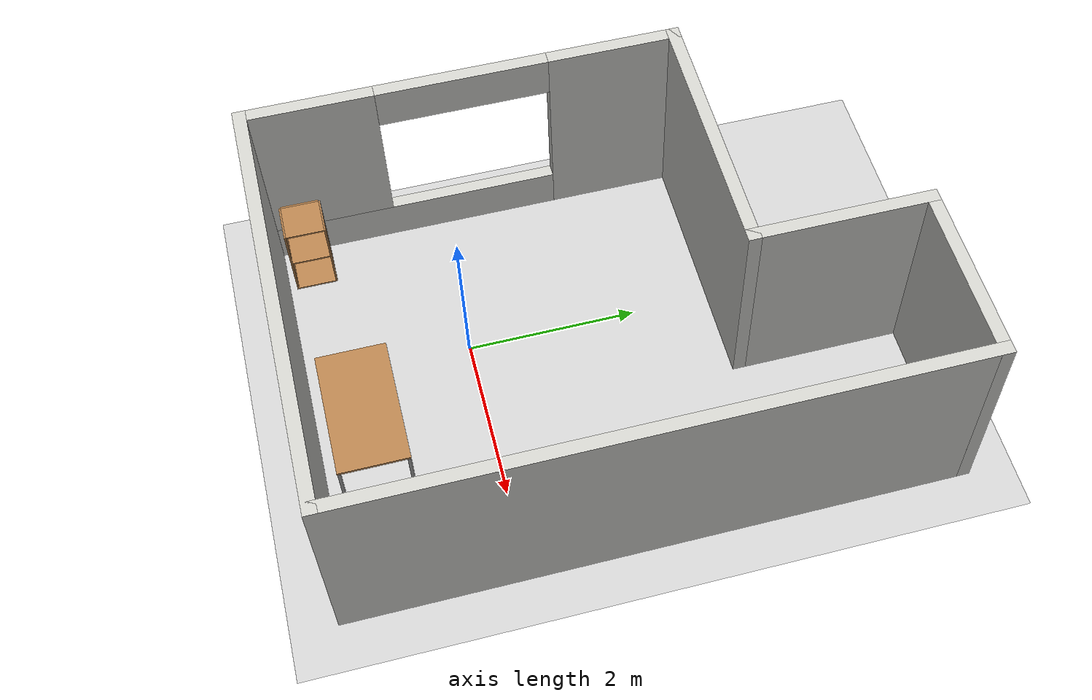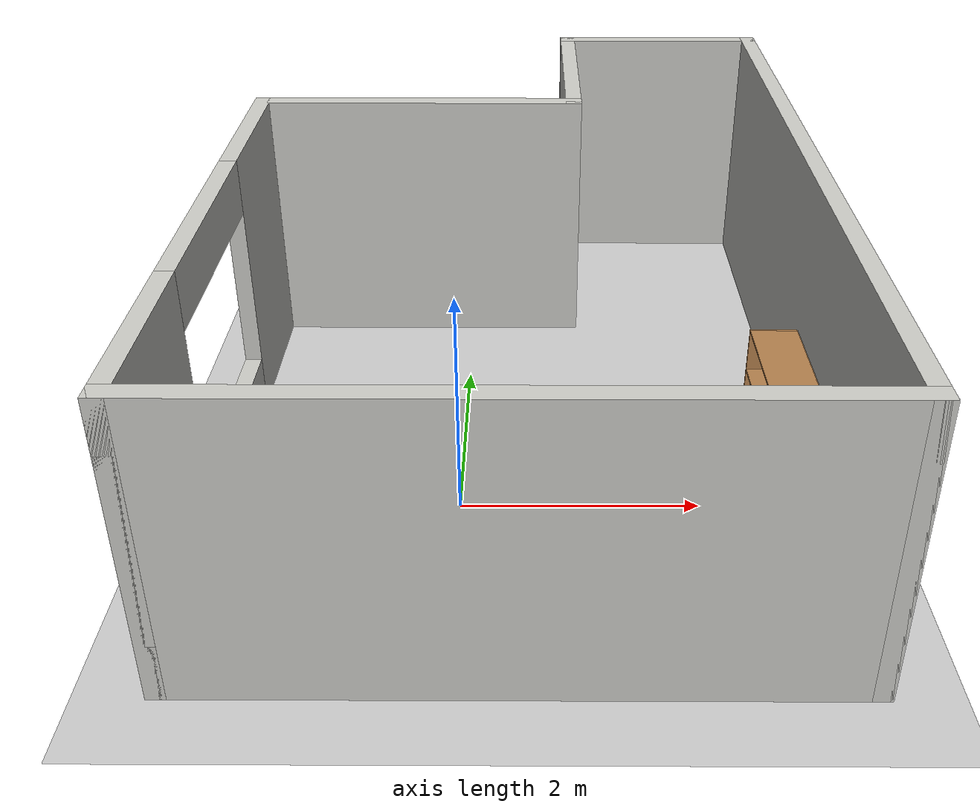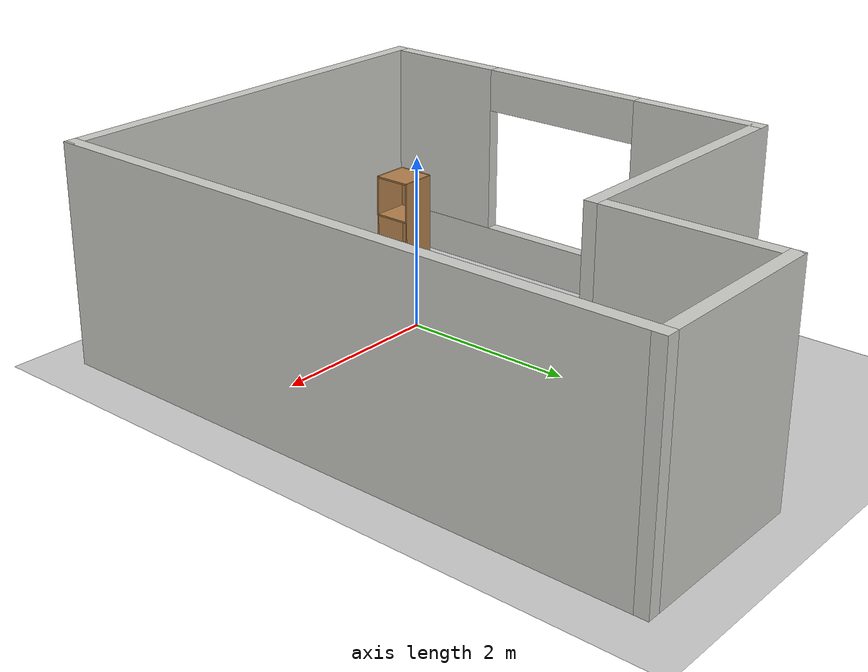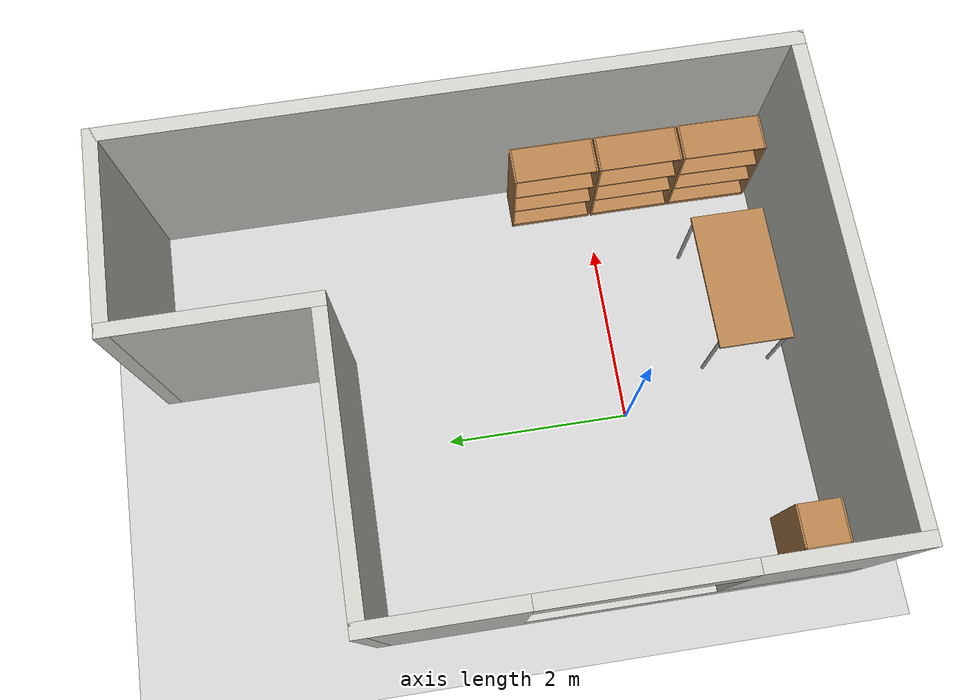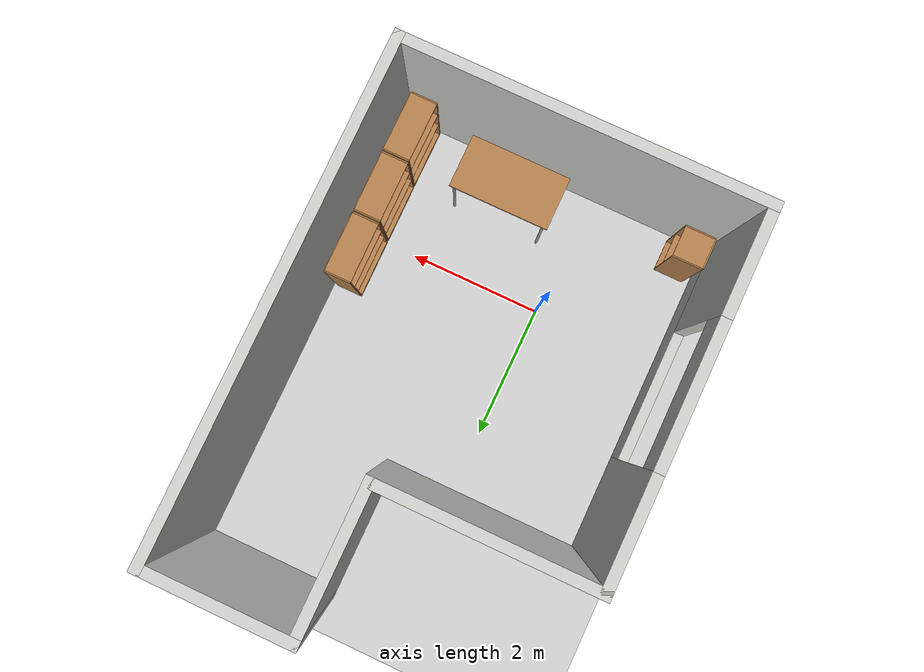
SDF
<sdf version="1.6">
 <world name="default">
  <light name="sun" type="directional">
   <pose>0 0 10 0 -0 0</pose>
   <diffuse>0.8 0.8 0.8 1</diffuse>
   <specular>0.2 0.2 0.2 1</specular>
   <attenuation>
    <range>1000</range>
    <constant>0.9</constant>
    <linear>0.01</linear>
    <quadratic>0.001</quadratic>
   </attenuation>
   <direction>-0.5 0.1 -0.9</direction>
   <spot><inner_angle>0</inner_angle><outer_angle>0</outer_angle><falloff>0</falloff></spot>
  </light>
  <model name="ground_plane">
   <static>1</static>
   <link name="link">
    <collision name="collision">
     <geometry><plane><normal>0 0 1</normal><size>100 100</size></plane></geometry>
     <surface>
      <contact><collide_bitmask>65535</collide_bitmask></contact>
      <friction><ode><mu>100</mu><mu2>50</mu2></ode></friction>
     </surface>
    </collision>
    <visual name="visual">
     <cast_shadows>0</cast_shadows>
     <geometry><plane><normal>0 0 1</normal><size>100 100</size></plane></geometry>
     <material>
      <script><uri>file://media/materials/scripts/gazebo.material</uri><name>Gazebo/Grey</name></script>
     </material>
    </visual>
   </link>
  </model>
  <gravity>0 0 -9.8</gravity>
  <magnetic_field>6e-06 2.3e-05 -4.2e-05</magnetic_field>
  <atmosphere type="adiabatic"/>
  <physics type="ode">
   <max_step_size>0.001</max_step_size>
   <real_time_factor>1</real_time_factor>
   <real_time_update_rate>1000</real_time_update_rate>
  </physics>
  <scene><ambient>0.4 0.4 0.4 1</ambient><background>0.7 0.7 0.7 1</background><shadows>1</shadows></scene>
  <spherical_coordinates>
   <surface_model>EARTH_WGS84</surface_model>
   <latitude_deg>0</latitude_deg>
   <longitude_deg>0</longitude_deg>
   <elevation>0</elevation>
   <heading_deg>0</heading_deg>
  </spherical_coordinates>
  <model name="room">
   <pose>0.5 1.5 0 0 -0 0</pose>
   <link name="Wall_0">
    <pose>-2.5 -1 0 0 -0 -1.5708</pose>
    <visual name="Wall_0_Visual_0">
     <pose>-1.7875 0 1.25 0 -0 0</pose>
     <geometry><box><size>1.575 0.15 2.5</size></box></geometry>
     <material>
      <script><uri>file://media/materials/scripts/gazebo.material</uri><name>Gazebo/CeilingTiled</name></script>
      <ambient>1 1 1 1</ambient>
     </material>
     <meta><layer>0</layer></meta>
    </visual>
    <collision name="Wall_0_Collision_0">
     <geometry><box><size>1.575 0.15 2.5</size></box></geometry>
     <pose>-1.7875 0 1.25 0 -0 0</pose>
    </collision>
    <visual name="Wall_0_Visual_1">
     <pose>0.7875 0 0.25 0 -0 0</pose>
     <geometry><box><size>3.575 0.15 0.5</size></box></geometry>
     <material>
      <script><uri>file://media/materials/scripts/gazebo.material</uri><name>Gazebo/CeilingTiled</name></script>
      <ambient>1 1 1 1</ambient>
     </material>
     <meta><layer>0</layer></meta>
    </visual>
    <collision name="Wall_0_Collision_1">
     <geometry><box><size>3.575 0.15 0.5</size></box></geometry>
     <pose>0.7875 0 0.25 0 -0 0</pose>
    </collision>
    <visual name="Wall_0_Visual_2">
     <pose>1.7875 0 1.5 0 -0 0</pose>
     <geometry><box><size>1.575 0.15 2</size></box></geometry>
     <material>
      <script><uri>file://media/materials/scripts/gazebo.material</uri><name>Gazebo/CeilingTiled</name></script>
      <ambient>1 1 1 1</ambient>
     </material>
     <meta><layer>0</layer></meta>
    </visual>
    <collision name="Wall_0_Collision_2">
     <geometry><box><size>1.575 0.15 2</size></box></geometry>
     <pose>1.7875 0 1.5 0 -0 0</pose>
    </collision>
    <visual name="Wall_0_Visual_3">
     <pose>0 0 2.25 0 -0 0</pose>
     <geometry><box><size>2 0.15 0.5</size></box></geometry>
     <material>
      <script><uri>file://media/materials/scripts/gazebo.material</uri><name>Gazebo/CeilingTiled</name></script>
      <ambient>1 1 1 1</ambient>
     </material>
     <meta><layer>0</layer></meta>
    </visual>
    <collision name="Wall_0_Collision_3">
     <geometry><box><size>2 0.15 0.5</size></box></geometry>
     <pose>0 0 2.25 0 -0 0</pose>
    </collision>
   </link>
   <link name="Wall_1">
    <collision name="Wall_1_Collision">
     <geometry><box><size>5.15 0.15 2.5</size></box></geometry>
     <pose>0 0 1.25 0 -0 0</pose>
    </collision>
    <visual name="Wall_1_Visual">
     <pose>0 0 1.25 0 -0 0</pose>
     <geometry><box><size>5.15 0.15 2.5</size></box></geometry>
     <material>
      <script><uri>file://media/materials/scripts/gazebo.material</uri><name>Gazebo/CeilingTiled</name></script>
      <ambient>1 1 1 1</ambient>
     </material>
     <meta><layer>0</layer></meta>
    </visual>
    <pose>-0 -3.5 0 0 -0 0</pose>
   </link>
   <link name="Wall_2">
    <collision name="Wall_2_Collision">
     <geometry><box><size>7.15 0.15 2.5</size></box></geometry>
     <pose>0 0 1.25 0 -0 0</pose>
    </collision>
    <visual name="Wall_2_Visual">
     <pose>0 0 1.25 0 -0 0</pose>
     <geometry><box><size>7.15 0.15 2.5</size></box></geometry>
     <material>
      <script><uri>file://media/materials/scripts/gazebo.material</uri><name>Gazebo/CeilingTiled</name></script>
      <ambient>1 1 1 1</ambient>
     </material>
     <meta><layer>0</layer></meta>
    </visual>
    <pose>2.5 -0 0 0 -0 1.5708</pose>
   </link>
   <link name="Wall_3">
    <collision name="Wall_3_Collision">
     <geometry><box><size>2.15 0.15 2.5</size></box></geometry>
     <pose>0 0 1.25 0 -0 0</pose>
    </collision>
    <visual name="Wall_3_Visual">
     <pose>0 0 1.25 0 -0 0</pose>
     <geometry><box><size>2.15 0.15 2.5</size></box></geometry>
     <material>
      <script><uri>file://media/materials/scripts/gazebo.material</uri><name>Gazebo/CeilingTiled</name></script>
      <ambient>1 1 1 1</ambient>
     </material>
     <meta><layer>0</layer></meta>
    </visual>
    <pose>1.5 3.5 0 0 -0 3.14159</pose>
   </link>
   <link name="Wall_4">
    <collision name="Wall_4_Collision">
     <geometry><box><size>2.15 0.15 2.5</size></box></geometry>
     <pose>0 0 1.25 0 -0 0</pose>
    </collision>
    <visual name="Wall_4_Visual">
     <pose>0 0 1.25 0 -0 0</pose>
     <geometry><box><size>2.15 0.15 2.5</size></box></geometry>
     <material>
      <script><uri>file://media/materials/scripts/gazebo.material</uri><name>Gazebo/CeilingTiled</name></script>
      <ambient>1 1 1 1</ambient>
     </material>
     <meta><layer>0</layer></meta>
    </visual>
    <pose>0.5 2.5 0 0 -0 -1.5708</pose>
   </link>
   <link name="Wall_5">
    <collision name="Wall_5_Collision">
     <geometry><box><size>3.15 0.15 2.5</size></box></geometry>
     <pose>0 0 1.25 0 -0 0</pose>
    </collision>
    <visual name="Wall_5_Visual">
     <pose>0 0 1.25 0 -0 0</pose>
     <geometry><box><size>3.15 0.15 2.5</size></box></geometry>
     <material>
      <script><uri>file://media/materials/scripts/gazebo.material</uri><name>Gazebo/CeilingTiled</name></script>
      <ambient>1 1 1 1</ambient>
     </material>
     <meta><layer>0</layer></meta>
    </visual>
    <pose>-1 1.5 0 0 -0 3.14159</pose>
   </link>
   <static>1</static>
  </model>
  <model name="table">
   <static>1</static>
   <link name="link">
    <collision name="surface">
     <pose>0 0 1 0 -0 0</pose>
     <geometry><box><size>1.5 0.8 0.03</size></box></geometry>
     <surface><friction><ode><mu>0.6</mu><mu2>0.6</mu2></ode></friction></surface>
    </collision>
    <visual name="visual1">
     <pose>0 0 1 0 -0 0</pose>
     <geometry><box><size>1.5 0.8 0.03</size></box></geometry>
     <material>
      <script><uri>file://media/materials/scripts/gazebo.material</uri><name>Gazebo/Wood</name></script>
     </material>
    </visual>
    <collision name="front_left_leg">
     <pose>0.68 0.38 0.5 0 -0 0</pose>
     <geometry><cylinder><radius>0.02</radius><length>1</length></cylinder></geometry>
    </collision>
    <visual name="front_left_leg">
     <pose>0.68 0.38 0.5 0 -0 0</pose>
     <geometry><cylinder><radius>0.02</radius><length>1</length></cylinder></geometry>
     <material>
      <script><uri>file://media/materials/scripts/gazebo.material</uri><name>Gazebo/Grey</name></script>
     </material>
    </visual>
    <collision name="front_right_leg">
     <pose>0.68 -0.38 0.5 0 -0 0</pose>
     <geometry><cylinder><radius>0.02</radius><length>1</length></cylinder></geometry>
    </collision>
    <visual name="front_right_leg">
     <pose>0.68 -0.38 0.5 0 -0 0</pose>
     <geometry><cylinder><radius>0.02</radius><length>1</length></cylinder></geometry>
     <material>
      <script><uri>file://media/materials/scripts/gazebo.material</uri><name>Gazebo/Grey</name></script>
     </material>
    </visual>
    <collision name="back_right_leg">
     <pose>-0.68 -0.38 0.5 0 -0 0</pose>
     <geometry><cylinder><radius>0.02</radius><length>1</length></cylinder></geometry>
    </collision>
    <visual name="back_right_leg">
     <pose>-0.68 -0.38 0.5 0 -0 0</pose>
     <geometry><cylinder><radius>0.02</radius><length>1</length></cylinder></geometry>
     <material>
      <script><uri>file://media/materials/scripts/gazebo.material</uri><name>Gazebo/Grey</name></script>
     </material>
    </visual>
    <collision name="back_left_leg">
     <pose>-0.68 0.38 0.5 0 -0 0</pose>
     <geometry><cylinder><radius>0.02</radius><length>1</length></cylinder></geometry>
    </collision>
    <visual name="back_left_leg">
     <pose>-0.68 0.38 0.5 0 -0 0</pose>
     <geometry><cylinder><radius>0.02</radius><length>1</length></cylinder></geometry>
     <material>
      <script><uri>file://media/materials/scripts/gazebo.material</uri><name>Gazebo/Grey</name></script>
     </material>
    </visual>
   </link>
   <pose>1.10564 -1.35548 0 0 -0 0</pose>
  </model>
  <model name="bookshelf">
   <static>1</static>
   <link name="link">
    <inertial><mass>1</mass></inertial>
    <collision name="back">
     <pose>0 0.005 0.6 0 -0 0</pose>
     <geometry><box><size>0.9 0.01 1.2</size></box></geometry>
    </collision>
    <visual name="visual1">
     <pose>0 0.005 0.6 0 -0 0</pose>
     <geometry><box><size>0.9 0.01 1.2</size></box></geometry>
     <material>
      <script><uri>file://media/materials/scripts/gazebo.material</uri><name>Gazebo/Wood</name></script>
     </material>
    </visual>
    <collision name="left_side">
     <pose>0.45 -0.195 0.6 0 -0 0</pose>
     <geometry><box><size>0.02 0.4 1.2</size></box></geometry>
    </collision>
    <visual name="visual2">
     <pose>0.45 -0.195 0.6 0 -0 0</pose>
     <geometry><box><size>0.02 0.4 1.2</size></box></geometry>
     <material>
      <script><uri>file://media/materials/scripts/gazebo.material</uri><name>Gazebo/Wood</name></script>
     </material>
    </visual>
    <collision name="right_side">
     <pose>-0.45 -0.195 0.6 0 -0 0</pose>
     <geometry><box><size>0.02 0.4 1.2</size></box></geometry>
    </collision>
    <visual name="visual3">
     <pose>-0.45 -0.195 0.6 0 -0 0</pose>
     <geometry><box><size>0.02 0.4 1.2</size></box></geometry>
     <material>
      <script><uri>file://media/materials/scripts/gazebo.material</uri><name>Gazebo/Wood</name></script>
     </material>
    </visual>
    <collision name="bottom">
     <pose>0 -0.195 0.03 0 -0 0</pose>
     <geometry><box><size>0.88 0.4 0.06</size></box></geometry>
    </collision>
    <visual name="visual4">
     <pose>0 -0.195 0.03 0 -0 0</pose>
     <geometry><box><size>0.88 0.4 0.06</size></box></geometry>
     <material>
      <script><uri>file://media/materials/scripts/gazebo.material</uri><name>Gazebo/Wood</name></script>
     </material>
    </visual>
    <collision name="top">
     <pose>0 -0.195 1.19 0 -0 0</pose>
     <geometry><box><size>0.88 0.4 0.02</size></box></geometry>
    </collision>
    <visual name="visual5">
     <pose>0 -0.195 1.19 0 -0 0</pose>
     <geometry><box><size>0.88 0.4 0.02</size></box></geometry>
     <material>
      <script><uri>file://media/materials/scripts/gazebo.material</uri><name>Gazebo/Wood</name></script>
     </material>
    </visual>
    <collision name="low_shelf">
     <pose>0 -0.195 0.43 0 -0 0</pose>
     <geometry><box><size>0.88 0.4 0.02</size></box></geometry>
    </collision>
    <visual name="visual6">
     <pose>0 -0.195 0.43 0 -0 0</pose>
     <geometry><box><size>0.88 0.4 0.02</size></box></geometry>
     <material>
      <script><uri>file://media/materials/scripts/gazebo.material</uri><name>Gazebo/Wood</name></script>
     </material>
    </visual>
    <collision name="high_shelf">
     <pose>0 -0.195 0.8 0 -0 0</pose>
     <geometry><box><size>0.88 0.4 0.02</size></box></geometry>
    </collision>
    <visual name="visual7">
     <pose>0 -0.195 0.8 0 -0 0</pose>
     <geometry><box><size>0.88 0.4 0.02</size></box></geometry>
     <material>
      <script><uri>file://media/materials/scripts/gazebo.material</uri><name>Gazebo/Wood</name></script>
     </material>
    </visual>
   </link>
   <pose>2.86381 -1.43888 0 0 0 -1.57783</pose>
  </model>
  <model name="bookshelf_0">
   <static>1</static>
   <link name="link">
    <inertial><mass>1</mass></inertial>
    <collision name="back">
     <pose>0 0.005 0.6 0 -0 0</pose>
     <geometry><box><size>0.9 0.01 1.2</size></box></geometry>
    </collision>
    <visual name="visual1">
     <pose>0 0.005 0.6 0 -0 0</pose>
     <geometry><box><size>0.9 0.01 1.2</size></box></geometry>
     <material>
      <script><uri>file://media/materials/scripts/gazebo.material</uri><name>Gazebo/Wood</name></script>
     </material>
    </visual>
    <collision name="left_side">
     <pose>0.45 -0.195 0.6 0 -0 0</pose>
     <geometry><box><size>0.02 0.4 1.2</size></box></geometry>
    </collision>
    <visual name="visual2">
     <pose>0.45 -0.195 0.6 0 -0 0</pose>
     <geometry><box><size>0.02 0.4 1.2</size></box></geometry>
     <material>
      <script><uri>file://media/materials/scripts/gazebo.material</uri><name>Gazebo/Wood</name></script>
     </material>
    </visual>
    <collision name="right_side">
     <pose>-0.45 -0.195 0.6 0 -0 0</pose>
     <geometry><box><size>0.02 0.4 1.2</size></box></geometry>
    </collision>
    <visual name="visual3">
     <pose>-0.45 -0.195 0.6 0 -0 0</pose>
     <geometry><box><size>0.02 0.4 1.2</size></box></geometry>
     <material>
      <script><uri>file://media/materials/scripts/gazebo.material</uri><name>Gazebo/Wood</name></script>
     </material>
    </visual>
    <collision name="bottom">
     <pose>0 -0.195 0.03 0 -0 0</pose>
     <geometry><box><size>0.88 0.4 0.06</size></box></geometry>
    </collision>
    <visual name="visual4">
     <pose>0 -0.195 0.03 0 -0 0</pose>
     <geometry><box><size>0.88 0.4 0.06</size></box></geometry>
     <material>
      <script><uri>file://media/materials/scripts/gazebo.material</uri><name>Gazebo/Wood</name></script>
     </material>
    </visual>
    <collision name="top">
     <pose>0 -0.195 1.19 0 -0 0</pose>
     <geometry><box><size>0.88 0.4 0.02</size></box></geometry>
    </collision>
    <visual name="visual5">
     <pose>0 -0.195 1.19 0 -0 0</pose>
     <geometry><box><size>0.88 0.4 0.02</size></box></geometry>
     <material>
      <script><uri>file://media/materials/scripts/gazebo.material</uri><name>Gazebo/Wood</name></script>
     </material>
    </visual>
    <collision name="low_shelf">
     <pose>0 -0.195 0.43 0 -0 0</pose>
     <geometry><box><size>0.88 0.4 0.02</size></box></geometry>
    </collision>
    <visual name="visual6">
     <pose>0 -0.195 0.43 0 -0 0</pose>
     <geometry><box><size>0.88 0.4 0.02</size></box></geometry>
     <material>
      <script><uri>file://media/materials/scripts/gazebo.material</uri><name>Gazebo/Wood</name></script>
     </material>
    </visual>
    <collision name="high_shelf">
     <pose>0 -0.195 0.8 0 -0 0</pose>
     <geometry><box><size>0.88 0.4 0.02</size></box></geometry>
    </collision>
    <visual name="visual7">
     <pose>0 -0.195 0.8 0 -0 0</pose>
     <geometry><box><size>0.88 0.4 0.02</size></box></geometry>
     <material>
      <script><uri>file://media/materials/scripts/gazebo.material</uri><name>Gazebo/Wood</name></script>
     </material>
    </visual>
   </link>
   <pose>2.86552 -0.503263 0 0 0 -1.57</pose>
  </model>
  <model name="bookshelf_1">
   <static>1</static>
   <link name="link">
    <inertial><mass>1</mass></inertial>
    <collision name="back">
     <pose>0 0.005 0.6 0 -0 0</pose>
     <geometry><box><size>0.9 0.01 1.2</size></box></geometry>
    </collision>
    <visual name="visual1">
     <pose>0 0.005 0.6 0 -0 0</pose>
     <geometry><box><size>0.9 0.01 1.2</size></box></geometry>
     <material>
      <script><uri>file://media/materials/scripts/gazebo.material</uri><name>Gazebo/Wood</name></script>
     </material>
    </visual>
    <collision name="left_side">
     <pose>0.45 -0.195 0.6 0 -0 0</pose>
     <geometry><box><size>0.02 0.4 1.2</size></box></geometry>
    </collision>
    <visual name="visual2">
     <pose>0.45 -0.195 0.6 0 -0 0</pose>
     <geometry><box><size>0.02 0.4 1.2</size></box></geometry>
     <material>
      <script><uri>file://media/materials/scripts/gazebo.material</uri><name>Gazebo/Wood</name></script>
     </material>
    </visual>
    <collision name="right_side">
     <pose>-0.45 -0.195 0.6 0 -0 0</pose>
     <geometry><box><size>0.02 0.4 1.2</size></box></geometry>
    </collision>
    <visual name="visual3">
     <pose>-0.45 -0.195 0.6 0 -0 0</pose>
     <geometry><box><size>0.02 0.4 1.2</size></box></geometry>
     <material>
      <script><uri>file://media/materials/scripts/gazebo.material</uri><name>Gazebo/Wood</name></script>
     </material>
    </visual>
    <collision name="bottom">
     <pose>0 -0.195 0.03 0 -0 0</pose>
     <geometry><box><size>0.88 0.4 0.06</size></box></geometry>
    </collision>
    <visual name="visual4">
     <pose>0 -0.195 0.03 0 -0 0</pose>
     <geometry><box><size>0.88 0.4 0.06</size></box></geometry>
     <material>
      <script><uri>file://media/materials/scripts/gazebo.material</uri><name>Gazebo/Wood</name></script>
     </material>
    </visual>
    <collision name="top">
     <pose>0 -0.195 1.19 0 -0 0</pose>
     <geometry><box><size>0.88 0.4 0.02</size></box></geometry>
    </collision>
    <visual name="visual5">
     <pose>0 -0.195 1.19 0 -0 0</pose>
     <geometry><box><size>0.88 0.4 0.02</size></box></geometry>
     <material>
      <script><uri>file://media/materials/scripts/gazebo.material</uri><name>Gazebo/Wood</name></script>
     </material>
    </visual>
    <collision name="low_shelf">
     <pose>0 -0.195 0.43 0 -0 0</pose>
     <geometry><box><size>0.88 0.4 0.02</size></box></geometry>
    </collision>
    <visual name="visual6">
     <pose>0 -0.195 0.43 0 -0 0</pose>
     <geometry><box><size>0.88 0.4 0.02</size></box></geometry>
     <material>
      <script><uri>file://media/materials/scripts/gazebo.material</uri><name>Gazebo/Wood</name></script>
     </material>
    </visual>
    <collision name="high_shelf">
     <pose>0 -0.195 0.8 0 -0 0</pose>
     <geometry><box><size>0.88 0.4 0.02</size></box></geometry>
    </collision>
    <visual name="visual7">
     <pose>0 -0.195 0.8 0 -0 0</pose>
     <geometry><box><size>0.88 0.4 0.02</size></box></geometry>
     <material>
      <script><uri>file://media/materials/scripts/gazebo.material</uri><name>Gazebo/Wood</name></script>
     </material>
    </visual>
   </link>
   <pose>2.86534 0.432134 0 0 0 -1.57</pose>
  </model>
  <model name="cabinet">
   <static>1</static>
   <link name="cabinet_bottom_plate">
    <inertial>
     <pose>0 0 -1 0 -0 0</pose>
     <inertia><ixx>2.05</ixx><ixy>0</ixy><ixz>0</ixz><iyy>2.05</iyy><iyz>0</iyz><izz>2.05</izz></inertia>
     <mass>25</mass>
    </inertial>
    <collision name="cabinet_bottom_plate_geom">
     <pose>0 0 0.01 0 -0 0</pose>
     <geometry><box><size>0.45 0.45 0.02</size></box></geometry>
    </collision>
    <visual name="cabinet_bottom_plate_geom_visual">
     <pose>0 0 0.01 0 -0 0</pose>
     <geometry><box><size>0.45 0.45 0.02</size></box></geometry>
     <material>
      <script><uri>file://media/materials/scripts/gazebo.material</uri><name>Gazebo/Wood</name></script>
     </material>
    </visual>
    <collision name="cabinet_bottom_plate_geom_cabinet_back_plate">
     <pose>0.235 0 0.51 0 -0 0</pose>
     <geometry><box><size>0.02 0.45 1.02</size></box></geometry>
    </collision>
    <visual name="cabinet_bottom_plate_geom_cabinet_back_plate_visual">
     <pose>0.235 0 0.51 0 -0 0</pose>
     <geometry><box><size>0.02 0.45 1.02</size></box></geometry>
     <material>
      <script><uri>file://media/materials/scripts/gazebo.material</uri><name>Gazebo/Wood</name></script>
     </material>
    </visual>
    <collision name="cabinet_bottom_plate_geom_cabinet_left_plate">
     <pose>0 0.235 0.51 0 -0 0</pose>
     <geometry><box><size>0.45 0.02 1.02</size></box></geometry>
    </collision>
    <visual name="cabinet_bottom_plate_geom_cabinet_left_plate_visual">
     <pose>0 0.235 0.51 0 -0 0</pose>
     <geometry><box><size>0.45 0.02 1.02</size></box></geometry>
     <material>
      <script><uri>file://media/materials/scripts/gazebo.material</uri><name>Gazebo/Wood</name></script>
     </material>
    </visual>
    <collision name="cabinet_bottom_plate_geom_cabinet_middle_plate">
     <pose>0 0 0.51 0 -0 0</pose>
     <geometry><box><size>0.45 0.45 0.02</size></box></geometry>
    </collision>
    <visual name="cabinet_bottom_plate_geom_cabinet_middle_plate_visual">
     <pose>0 0 0.51 0 -0 0</pose>
     <geometry><box><size>0.45 0.45 0.02</size></box></geometry>
     <material>
      <script><uri>file://media/materials/scripts/gazebo.material</uri><name>Gazebo/Wood</name></script>
     </material>
    </visual>
    <collision name="cabinet_bottom_plate_geom_cabinet_right_plate">
     <pose>0 -0.235 0.51 0 -0 0</pose>
     <geometry><box><size>0.45 0.02 1.02</size></box></geometry>
    </collision>
    <visual name="cabinet_bottom_plate_geom_cabinet_right_plate_visual">
     <pose>0 -0.235 0.51 0 -0 0</pose>
     <geometry><box><size>0.45 0.02 1.02</size></box></geometry>
     <material>
      <script><uri>file://media/materials/scripts/gazebo.material</uri><name>Gazebo/Wood</name></script>
     </material>
    </visual>
    <collision name="cabinet_bottom_plate_geom_cabinet_top_plate">
     <pose>0 0 1.01 0 -0 0</pose>
     <geometry><box><size>0.45 0.45 0.02</size></box></geometry>
    </collision>
    <visual name="cabinet_bottom_plate_geom_cabinet_top_plate_visual">
     <pose>0 0 1.01 0 -0 0</pose>
     <geometry><box><size>0.45 0.45 0.02</size></box></geometry>
     <material>
      <script><uri>file://media/materials/scripts/gazebo.material</uri><name>Gazebo/Wood</name></script>
     </material>
    </visual>
   </link>
   <pose>-1.59676 -1.59291 0 0 -0 3.13912</pose>
  </model>
 </world>
</sdf>
